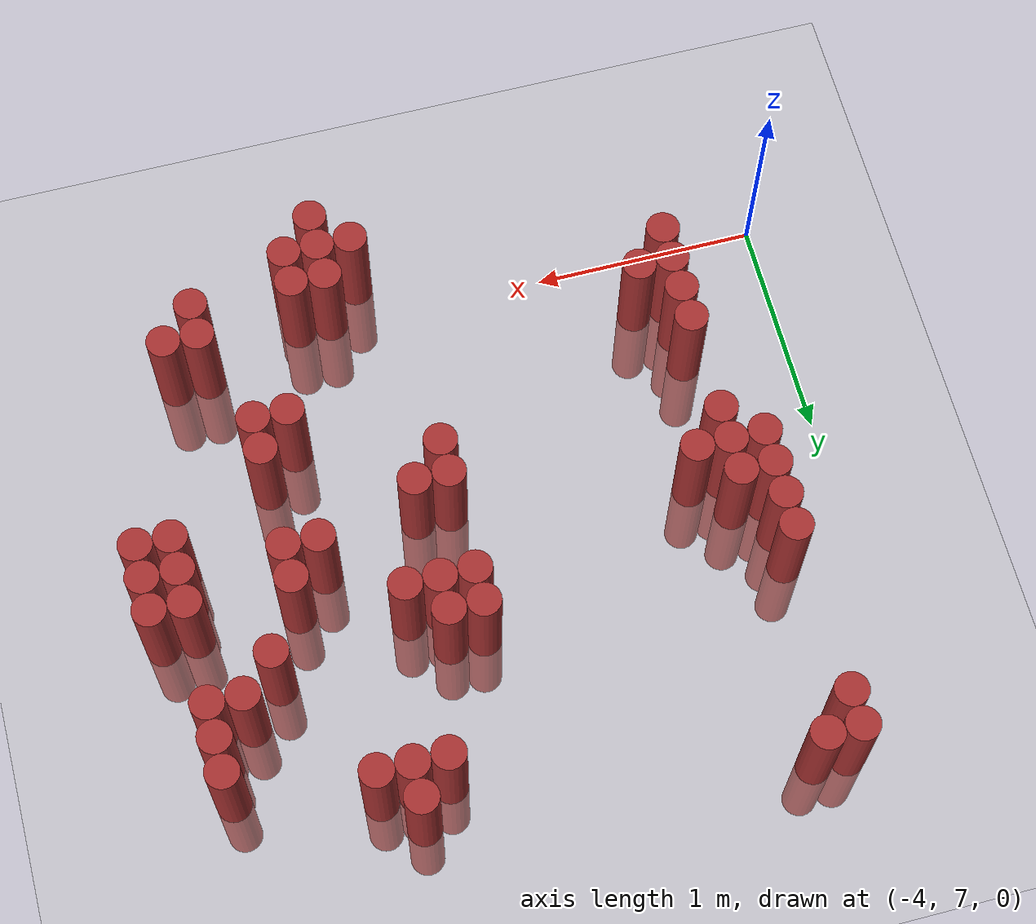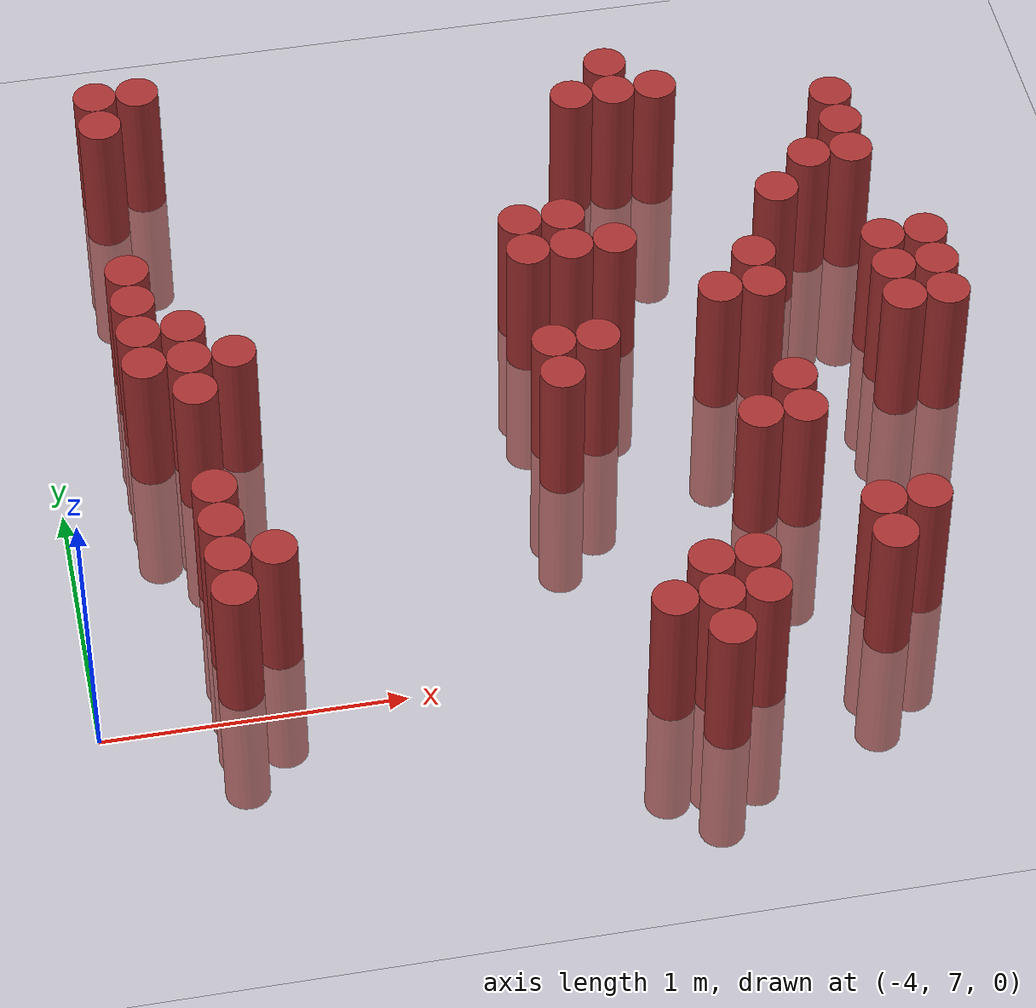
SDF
<sdf version="1.6">
 <world name="default">
  <model name="ground_plane">
   <static>1</static>
   <link name="link">
    <collision name="collision">
     <geometry><plane><normal>0 0 1</normal><size>100 100</size></plane></geometry>
     <surface><friction><ode><mu>100</mu><mu2>50</mu2></ode></friction></surface>
    </collision>
    <visual name="visual">
     <cast_shadows>0</cast_shadows>
     <geometry><plane><normal>0 0 1</normal><size>100 100</size></plane></geometry>
     <material>
      <script><uri>file://media/materials/scripts/gazebo.material</uri><name>Gazebo/Grey</name></script>
     </material>
    </visual>
   </link>
  </model>
  <model name="unit_cylinder_169">
   <static>1</static>
   <pose>-3.675000 8.175000 0.000000 0.000000 0.000000 0.000000</pose>
   <link name="link">
    <inertial>
     <mass>1</mass>
     <inertia><ixx>0.145833</ixx><ixy>0</ixy><ixz>0</ixz><iyy>0.145833</iyy><iyz>0</iyz><izz>0.125</izz></inertia>
    </inertial>
    <collision name="collision">
     <geometry><cylinder><radius>0.075000</radius><length>1</length></cylinder></geometry>
    </collision>
    <visual name="visual">
     <geometry><cylinder><radius>0.075000</radius><length>1</length></cylinder></geometry>
     <material>
      <ambient>0.648000 0.192000 0.192000 1</ambient>
      <diffuse>0.648000 0.192000 0.192000 1</diffuse>
     </material>
     <material>
      <script><name>Gazebo/Grey</name><uri>file://media/materials/scripts/gazebo.material</uri></script>
     </material>
    </visual>
   </link>
  </model>
  <model name="unit_cylinder_170">
   <static>1</static>
   <pose>-3.675000 8.325000 0.000000 0.000000 0.000000 0.000000</pose>
   <link name="link">
    <inertial>
     <mass>1</mass>
     <inertia><ixx>0.145833</ixx><ixy>0</ixy><ixz>0</ixz><iyy>0.145833</iyy><iyz>0</iyz><izz>0.125</izz></inertia>
    </inertial>
    <collision name="collision">
     <geometry><cylinder><radius>0.075000</radius><length>1</length></cylinder></geometry>
    </collision>
    <visual name="visual">
     <geometry><cylinder><radius>0.075000</radius><length>1</length></cylinder></geometry>
     <material>
      <ambient>0.648000 0.192000 0.192000 1</ambient>
      <diffuse>0.648000 0.192000 0.192000 1</diffuse>
     </material>
     <material>
      <script><name>Gazebo/Grey</name><uri>file://media/materials/scripts/gazebo.material</uri></script>
     </material>
    </visual>
   </link>
  </model>
  <model name="unit_cylinder_171">
   <static>1</static>
   <pose>-3.675000 8.475000 0.000000 0.000000 0.000000 0.000000</pose>
   <link name="link">
    <inertial>
     <mass>1</mass>
     <inertia><ixx>0.145833</ixx><ixy>0</ixy><ixz>0</ixz><iyy>0.145833</iyy><iyz>0</iyz><izz>0.125</izz></inertia>
    </inertial>
    <collision name="collision">
     <geometry><cylinder><radius>0.075000</radius><length>1</length></cylinder></geometry>
    </collision>
    <visual name="visual">
     <geometry><cylinder><radius>0.075000</radius><length>1</length></cylinder></geometry>
     <material>
      <ambient>0.648000 0.192000 0.192000 1</ambient>
      <diffuse>0.648000 0.192000 0.192000 1</diffuse>
     </material>
     <material>
      <script><name>Gazebo/Grey</name><uri>file://media/materials/scripts/gazebo.material</uri></script>
     </material>
    </visual>
   </link>
  </model>
  <model name="unit_cylinder_172">
   <static>1</static>
   <pose>-3.675000 8.625000 0.000000 0.000000 0.000000 0.000000</pose>
   <link name="link">
    <inertial>
     <mass>1</mass>
     <inertia><ixx>0.145833</ixx><ixy>0</ixy><ixz>0</ixz><iyy>0.145833</iyy><iyz>0</iyz><izz>0.125</izz></inertia>
    </inertial>
    <collision name="collision">
     <geometry><cylinder><radius>0.075000</radius><length>1</length></cylinder></geometry>
    </collision>
    <visual name="visual">
     <geometry><cylinder><radius>0.075000</radius><length>1</length></cylinder></geometry>
     <material>
      <ambient>0.648000 0.192000 0.192000 1</ambient>
      <diffuse>0.648000 0.192000 0.192000 1</diffuse>
     </material>
     <material>
      <script><name>Gazebo/Grey</name><uri>file://media/materials/scripts/gazebo.material</uri></script>
     </material>
    </visual>
   </link>
  </model>
  <model name="unit_cylinder_173">
   <static>1</static>
   <pose>-3.675000 9.375000 0.000000 0.000000 0.000000 0.000000</pose>
   <link name="link">
    <inertial>
     <mass>1</mass>
     <inertia><ixx>0.145833</ixx><ixy>0</ixy><ixz>0</ixz><iyy>0.145833</iyy><iyz>0</iyz><izz>0.125</izz></inertia>
    </inertial>
    <collision name="collision">
     <geometry><cylinder><radius>0.075000</radius><length>1</length></cylinder></geometry>
    </collision>
    <visual name="visual">
     <geometry><cylinder><radius>0.075000</radius><length>1</length></cylinder></geometry>
     <material>
      <ambient>0.648000 0.192000 0.192000 1</ambient>
      <diffuse>0.648000 0.192000 0.192000 1</diffuse>
     </material>
     <material>
      <script><name>Gazebo/Grey</name><uri>file://media/materials/scripts/gazebo.material</uri></script>
     </material>
    </visual>
   </link>
  </model>
  <model name="unit_cylinder_174">
   <static>1</static>
   <pose>-3.675000 9.525000 0.000000 0.000000 0.000000 0.000000</pose>
   <link name="link">
    <inertial>
     <mass>1</mass>
     <inertia><ixx>0.145833</ixx><ixy>0</ixy><ixz>0</ixz><iyy>0.145833</iyy><iyz>0</iyz><izz>0.125</izz></inertia>
    </inertial>
    <collision name="collision">
     <geometry><cylinder><radius>0.075000</radius><length>1</length></cylinder></geometry>
    </collision>
    <visual name="visual">
     <geometry><cylinder><radius>0.075000</radius><length>1</length></cylinder></geometry>
     <material>
      <ambient>0.648000 0.192000 0.192000 1</ambient>
      <diffuse>0.648000 0.192000 0.192000 1</diffuse>
     </material>
     <material>
      <script><name>Gazebo/Grey</name><uri>file://media/materials/scripts/gazebo.material</uri></script>
     </material>
    </visual>
   </link>
  </model>
  <model name="unit_cylinder_175">
   <static>1</static>
   <pose>-3.525000 7.125000 0.000000 0.000000 0.000000 0.000000</pose>
   <link name="link">
    <inertial>
     <mass>1</mass>
     <inertia><ixx>0.145833</ixx><ixy>0</ixy><ixz>0</ixz><iyy>0.145833</iyy><iyz>0</iyz><izz>0.125</izz></inertia>
    </inertial>
    <collision name="collision">
     <geometry><cylinder><radius>0.075000</radius><length>1</length></cylinder></geometry>
    </collision>
    <visual name="visual">
     <geometry><cylinder><radius>0.075000</radius><length>1</length></cylinder></geometry>
     <material>
      <ambient>0.648000 0.192000 0.192000 1</ambient>
      <diffuse>0.648000 0.192000 0.192000 1</diffuse>
     </material>
     <material>
      <script><name>Gazebo/Grey</name><uri>file://media/materials/scripts/gazebo.material</uri></script>
     </material>
    </visual>
   </link>
  </model>
  <model name="unit_cylinder_176">
   <static>1</static>
   <pose>-3.525000 7.275000 0.000000 0.000000 0.000000 0.000000</pose>
   <link name="link">
    <inertial>
     <mass>1</mass>
     <inertia><ixx>0.145833</ixx><ixy>0</ixy><ixz>0</ixz><iyy>0.145833</iyy><iyz>0</iyz><izz>0.125</izz></inertia>
    </inertial>
    <collision name="collision">
     <geometry><cylinder><radius>0.075000</radius><length>1</length></cylinder></geometry>
    </collision>
    <visual name="visual">
     <geometry><cylinder><radius>0.075000</radius><length>1</length></cylinder></geometry>
     <material>
      <ambient>0.648000 0.192000 0.192000 1</ambient>
      <diffuse>0.648000 0.192000 0.192000 1</diffuse>
     </material>
     <material>
      <script><name>Gazebo/Grey</name><uri>file://media/materials/scripts/gazebo.material</uri></script>
     </material>
    </visual>
   </link>
  </model>
  <model name="unit_cylinder_177">
   <static>1</static>
   <pose>-3.525000 7.425000 0.000000 0.000000 0.000000 0.000000</pose>
   <link name="link">
    <inertial>
     <mass>1</mass>
     <inertia><ixx>0.145833</ixx><ixy>0</ixy><ixz>0</ixz><iyy>0.145833</iyy><iyz>0</iyz><izz>0.125</izz></inertia>
    </inertial>
    <collision name="collision">
     <geometry><cylinder><radius>0.075000</radius><length>1</length></cylinder></geometry>
    </collision>
    <visual name="visual">
     <geometry><cylinder><radius>0.075000</radius><length>1</length></cylinder></geometry>
     <material>
      <ambient>0.648000 0.192000 0.192000 1</ambient>
      <diffuse>0.648000 0.192000 0.192000 1</diffuse>
     </material>
     <material>
      <script><name>Gazebo/Grey</name><uri>file://media/materials/scripts/gazebo.material</uri></script>
     </material>
    </visual>
   </link>
  </model>
  <model name="unit_cylinder_178">
   <static>1</static>
   <pose>-3.525000 7.575000 0.000000 0.000000 0.000000 0.000000</pose>
   <link name="link">
    <inertial>
     <mass>1</mass>
     <inertia><ixx>0.145833</ixx><ixy>0</ixy><ixz>0</ixz><iyy>0.145833</iyy><iyz>0</iyz><izz>0.125</izz></inertia>
    </inertial>
    <collision name="collision">
     <geometry><cylinder><radius>0.075000</radius><length>1</length></cylinder></geometry>
    </collision>
    <visual name="visual">
     <geometry><cylinder><radius>0.075000</radius><length>1</length></cylinder></geometry>
     <material>
      <ambient>0.648000 0.192000 0.192000 1</ambient>
      <diffuse>0.648000 0.192000 0.192000 1</diffuse>
     </material>
     <material>
      <script><name>Gazebo/Grey</name><uri>file://media/materials/scripts/gazebo.material</uri></script>
     </material>
    </visual>
   </link>
  </model>
  <model name="unit_cylinder_179">
   <static>1</static>
   <pose>-3.525000 8.025000 0.000000 0.000000 0.000000 0.000000</pose>
   <link name="link">
    <inertial>
     <mass>1</mass>
     <inertia><ixx>0.145833</ixx><ixy>0</ixy><ixz>0</ixz><iyy>0.145833</iyy><iyz>0</iyz><izz>0.125</izz></inertia>
    </inertial>
    <collision name="collision">
     <geometry><cylinder><radius>0.075000</radius><length>1</length></cylinder></geometry>
    </collision>
    <visual name="visual">
     <geometry><cylinder><radius>0.075000</radius><length>1</length></cylinder></geometry>
     <material>
      <ambient>0.648000 0.192000 0.192000 1</ambient>
      <diffuse>0.648000 0.192000 0.192000 1</diffuse>
     </material>
     <material>
      <script><name>Gazebo/Grey</name><uri>file://media/materials/scripts/gazebo.material</uri></script>
     </material>
    </visual>
   </link>
  </model>
  <model name="unit_cylinder_180">
   <static>1</static>
   <pose>-3.525000 8.175000 0.000000 0.000000 0.000000 0.000000</pose>
   <link name="link">
    <inertial>
     <mass>1</mass>
     <inertia><ixx>0.145833</ixx><ixy>0</ixy><ixz>0</ixz><iyy>0.145833</iyy><iyz>0</iyz><izz>0.125</izz></inertia>
    </inertial>
    <collision name="collision">
     <geometry><cylinder><radius>0.075000</radius><length>1</length></cylinder></geometry>
    </collision>
    <visual name="visual">
     <geometry><cylinder><radius>0.075000</radius><length>1</length></cylinder></geometry>
     <material>
      <ambient>0.648000 0.192000 0.192000 1</ambient>
      <diffuse>0.648000 0.192000 0.192000 1</diffuse>
     </material>
     <material>
      <script><name>Gazebo/Grey</name><uri>file://media/materials/scripts/gazebo.material</uri></script>
     </material>
    </visual>
   </link>
  </model>
  <model name="unit_cylinder_181">
   <static>1</static>
   <pose>-3.525000 8.325000 0.000000 0.000000 0.000000 0.000000</pose>
   <link name="link">
    <inertial>
     <mass>1</mass>
     <inertia><ixx>0.145833</ixx><ixy>0</ixy><ixz>0</ixz><iyy>0.145833</iyy><iyz>0</iyz><izz>0.125</izz></inertia>
    </inertial>
    <collision name="collision">
     <geometry><cylinder><radius>0.075000</radius><length>1</length></cylinder></geometry>
    </collision>
    <visual name="visual">
     <geometry><cylinder><radius>0.075000</radius><length>1</length></cylinder></geometry>
     <material>
      <ambient>0.648000 0.192000 0.192000 1</ambient>
      <diffuse>0.648000 0.192000 0.192000 1</diffuse>
     </material>
     <material>
      <script><name>Gazebo/Grey</name><uri>file://media/materials/scripts/gazebo.material</uri></script>
     </material>
    </visual>
   </link>
  </model>
  <model name="unit_cylinder_182">
   <static>1</static>
   <pose>-3.525000 9.525000 0.000000 0.000000 0.000000 0.000000</pose>
   <link name="link">
    <inertial>
     <mass>1</mass>
     <inertia><ixx>0.145833</ixx><ixy>0</ixy><ixz>0</ixz><iyy>0.145833</iyy><iyz>0</iyz><izz>0.125</izz></inertia>
    </inertial>
    <collision name="collision">
     <geometry><cylinder><radius>0.075000</radius><length>1</length></cylinder></geometry>
    </collision>
    <visual name="visual">
     <geometry><cylinder><radius>0.075000</radius><length>1</length></cylinder></geometry>
     <material>
      <ambient>0.648000 0.192000 0.192000 1</ambient>
      <diffuse>0.648000 0.192000 0.192000 1</diffuse>
     </material>
     <material>
      <script><name>Gazebo/Grey</name><uri>file://media/materials/scripts/gazebo.material</uri></script>
     </material>
    </visual>
   </link>
  </model>
  <model name="unit_cylinder_183">
   <static>1</static>
   <pose>-3.375000 7.275000 0.000000 0.000000 0.000000 0.000000</pose>
   <link name="link">
    <inertial>
     <mass>1</mass>
     <inertia><ixx>0.145833</ixx><ixy>0</ixy><ixz>0</ixz><iyy>0.145833</iyy><iyz>0</iyz><izz>0.125</izz></inertia>
    </inertial>
    <collision name="collision">
     <geometry><cylinder><radius>0.075000</radius><length>1</length></cylinder></geometry>
    </collision>
    <visual name="visual">
     <geometry><cylinder><radius>0.075000</radius><length>1</length></cylinder></geometry>
     <material>
      <ambient>0.648000 0.192000 0.192000 1</ambient>
      <diffuse>0.648000 0.192000 0.192000 1</diffuse>
     </material>
     <material>
      <script><name>Gazebo/Grey</name><uri>file://media/materials/scripts/gazebo.material</uri></script>
     </material>
    </visual>
   </link>
  </model>
  <model name="unit_cylinder_184">
   <static>1</static>
   <pose>-3.375000 8.175000 0.000000 0.000000 0.000000 0.000000</pose>
   <link name="link">
    <inertial>
     <mass>1</mass>
     <inertia><ixx>0.145833</ixx><ixy>0</ixy><ixz>0</ixz><iyy>0.145833</iyy><iyz>0</iyz><izz>0.125</izz></inertia>
    </inertial>
    <collision name="collision">
     <geometry><cylinder><radius>0.075000</radius><length>1</length></cylinder></geometry>
    </collision>
    <visual name="visual">
     <geometry><cylinder><radius>0.075000</radius><length>1</length></cylinder></geometry>
     <material>
      <ambient>0.648000 0.192000 0.192000 1</ambient>
      <diffuse>0.648000 0.192000 0.192000 1</diffuse>
     </material>
     <material>
      <script><name>Gazebo/Grey</name><uri>file://media/materials/scripts/gazebo.material</uri></script>
     </material>
    </visual>
   </link>
  </model>
  <model name="unit_cylinder_192">
   <static>1</static>
   <pose>-2.325000 7.875000 0.000000 0.000000 0.000000 0.000000</pose>
   <link name="link">
    <inertial>
     <mass>1</mass>
     <inertia><ixx>0.145833</ixx><ixy>0</ixy><ixz>0</ixz><iyy>0.145833</iyy><iyz>0</iyz><izz>0.125</izz></inertia>
    </inertial>
    <collision name="collision">
     <geometry><cylinder><radius>0.075000</radius><length>1</length></cylinder></geometry>
    </collision>
    <visual name="visual">
     <geometry><cylinder><radius>0.075000</radius><length>1</length></cylinder></geometry>
     <material>
      <ambient>0.648000 0.192000 0.192000 1</ambient>
      <diffuse>0.648000 0.192000 0.192000 1</diffuse>
     </material>
     <material>
      <script><name>Gazebo/Grey</name><uri>file://media/materials/scripts/gazebo.material</uri></script>
     </material>
    </visual>
   </link>
  </model>
  <model name="unit_cylinder_193">
   <static>1</static>
   <pose>-2.325000 8.025000 0.000000 0.000000 0.000000 0.000000</pose>
   <link name="link">
    <inertial>
     <mass>1</mass>
     <inertia><ixx>0.145833</ixx><ixy>0</ixy><ixz>0</ixz><iyy>0.145833</iyy><iyz>0</iyz><izz>0.125</izz></inertia>
    </inertial>
    <collision name="collision">
     <geometry><cylinder><radius>0.075000</radius><length>1</length></cylinder></geometry>
    </collision>
    <visual name="visual">
     <geometry><cylinder><radius>0.075000</radius><length>1</length></cylinder></geometry>
     <material>
      <ambient>0.648000 0.192000 0.192000 1</ambient>
      <diffuse>0.648000 0.192000 0.192000 1</diffuse>
     </material>
     <material>
      <script><name>Gazebo/Grey</name><uri>file://media/materials/scripts/gazebo.material</uri></script>
     </material>
    </visual>
   </link>
  </model>
  <model name="unit_cylinder_194">
   <static>1</static>
   <pose>-2.325000 8.475000 0.000000 0.000000 0.000000 0.000000</pose>
   <link name="link">
    <inertial>
     <mass>1</mass>
     <inertia><ixx>0.145833</ixx><ixy>0</ixy><ixz>0</ixz><iyy>0.145833</iyy><iyz>0</iyz><izz>0.125</izz></inertia>
    </inertial>
    <collision name="collision">
     <geometry><cylinder><radius>0.075000</radius><length>1</length></cylinder></geometry>
    </collision>
    <visual name="visual">
     <geometry><cylinder><radius>0.075000</radius><length>1</length></cylinder></geometry>
     <material>
      <ambient>0.648000 0.192000 0.192000 1</ambient>
      <diffuse>0.648000 0.192000 0.192000 1</diffuse>
     </material>
     <material>
      <script><name>Gazebo/Grey</name><uri>file://media/materials/scripts/gazebo.material</uri></script>
     </material>
    </visual>
   </link>
  </model>
  <model name="unit_cylinder_195">
   <static>1</static>
   <pose>-2.325000 8.625000 0.000000 0.000000 0.000000 0.000000</pose>
   <link name="link">
    <inertial>
     <mass>1</mass>
     <inertia><ixx>0.145833</ixx><ixy>0</ixy><ixz>0</ixz><iyy>0.145833</iyy><iyz>0</iyz><izz>0.125</izz></inertia>
    </inertial>
    <collision name="collision">
     <geometry><cylinder><radius>0.075000</radius><length>1</length></cylinder></geometry>
    </collision>
    <visual name="visual">
     <geometry><cylinder><radius>0.075000</radius><length>1</length></cylinder></geometry>
     <material>
      <ambient>0.648000 0.192000 0.192000 1</ambient>
      <diffuse>0.648000 0.192000 0.192000 1</diffuse>
     </material>
     <material>
      <script><name>Gazebo/Grey</name><uri>file://media/materials/scripts/gazebo.material</uri></script>
     </material>
    </visual>
   </link>
  </model>
  <model name="unit_cylinder_198">
   <static>1</static>
   <pose>-2.175000 6.825000 0.000000 0.000000 0.000000 0.000000</pose>
   <link name="link">
    <inertial>
     <mass>1</mass>
     <inertia><ixx>0.145833</ixx><ixy>0</ixy><ixz>0</ixz><iyy>0.145833</iyy><iyz>0</iyz><izz>0.125</izz></inertia>
    </inertial>
    <collision name="collision">
     <geometry><cylinder><radius>0.075000</radius><length>1</length></cylinder></geometry>
    </collision>
    <visual name="visual">
     <geometry><cylinder><radius>0.075000</radius><length>1</length></cylinder></geometry>
     <material>
      <ambient>0.648000 0.192000 0.192000 1</ambient>
      <diffuse>0.648000 0.192000 0.192000 1</diffuse>
     </material>
     <material>
      <script><name>Gazebo/Grey</name><uri>file://media/materials/scripts/gazebo.material</uri></script>
     </material>
    </visual>
   </link>
  </model>
  <model name="unit_cylinder_199">
   <static>1</static>
   <pose>-2.175000 8.025000 0.000000 0.000000 0.000000 0.000000</pose>
   <link name="link">
    <inertial>
     <mass>1</mass>
     <inertia><ixx>0.145833</ixx><ixy>0</ixy><ixz>0</ixz><iyy>0.145833</iyy><iyz>0</iyz><izz>0.125</izz></inertia>
    </inertial>
    <collision name="collision">
     <geometry><cylinder><radius>0.075000</radius><length>1</length></cylinder></geometry>
    </collision>
    <visual name="visual">
     <geometry><cylinder><radius>0.075000</radius><length>1</length></cylinder></geometry>
     <material>
      <ambient>0.648000 0.192000 0.192000 1</ambient>
      <diffuse>0.648000 0.192000 0.192000 1</diffuse>
     </material>
     <material>
      <script><name>Gazebo/Grey</name><uri>file://media/materials/scripts/gazebo.material</uri></script>
     </material>
    </visual>
   </link>
  </model>
  <model name="unit_cylinder_200">
   <static>1</static>
   <pose>-2.175000 8.475000 0.000000 0.000000 0.000000 0.000000</pose>
   <link name="link">
    <inertial>
     <mass>1</mass>
     <inertia><ixx>0.145833</ixx><ixy>0</ixy><ixz>0</ixz><iyy>0.145833</iyy><iyz>0</iyz><izz>0.125</izz></inertia>
    </inertial>
    <collision name="collision">
     <geometry><cylinder><radius>0.075000</radius><length>1</length></cylinder></geometry>
    </collision>
    <visual name="visual">
     <geometry><cylinder><radius>0.075000</radius><length>1</length></cylinder></geometry>
     <material>
      <ambient>0.648000 0.192000 0.192000 1</ambient>
      <diffuse>0.648000 0.192000 0.192000 1</diffuse>
     </material>
     <material>
      <script><name>Gazebo/Grey</name><uri>file://media/materials/scripts/gazebo.material</uri></script>
     </material>
    </visual>
   </link>
  </model>
  <model name="unit_cylinder_201">
   <static>1</static>
   <pose>-2.175000 8.625000 0.000000 0.000000 0.000000 0.000000</pose>
   <link name="link">
    <inertial>
     <mass>1</mass>
     <inertia><ixx>0.145833</ixx><ixy>0</ixy><ixz>0</ixz><iyy>0.145833</iyy><iyz>0</iyz><izz>0.125</izz></inertia>
    </inertial>
    <collision name="collision">
     <geometry><cylinder><radius>0.075000</radius><length>1</length></cylinder></geometry>
    </collision>
    <visual name="visual">
     <geometry><cylinder><radius>0.075000</radius><length>1</length></cylinder></geometry>
     <material>
      <ambient>0.648000 0.192000 0.192000 1</ambient>
      <diffuse>0.648000 0.192000 0.192000 1</diffuse>
     </material>
     <material>
      <script><name>Gazebo/Grey</name><uri>file://media/materials/scripts/gazebo.material</uri></script>
     </material>
    </visual>
   </link>
  </model>
  <model name="unit_cylinder_203">
   <static>1</static>
   <pose>-2.025000 6.675000 0.000000 0.000000 0.000000 0.000000</pose>
   <link name="link">
    <inertial>
     <mass>1</mass>
     <inertia><ixx>0.145833</ixx><ixy>0</ixy><ixz>0</ixz><iyy>0.145833</iyy><iyz>0</iyz><izz>0.125</izz></inertia>
    </inertial>
    <collision name="collision">
     <geometry><cylinder><radius>0.075000</radius><length>1</length></cylinder></geometry>
    </collision>
    <visual name="visual">
     <geometry><cylinder><radius>0.075000</radius><length>1</length></cylinder></geometry>
     <material>
      <ambient>0.648000 0.192000 0.192000 1</ambient>
      <diffuse>0.648000 0.192000 0.192000 1</diffuse>
     </material>
     <material>
      <script><name>Gazebo/Grey</name><uri>file://media/materials/scripts/gazebo.material</uri></script>
     </material>
    </visual>
   </link>
  </model>
  <model name="unit_cylinder_204">
   <static>1</static>
   <pose>-2.025000 6.825000 0.000000 0.000000 0.000000 0.000000</pose>
   <link name="link">
    <inertial>
     <mass>1</mass>
     <inertia><ixx>0.145833</ixx><ixy>0</ixy><ixz>0</ixz><iyy>0.145833</iyy><iyz>0</iyz><izz>0.125</izz></inertia>
    </inertial>
    <collision name="collision">
     <geometry><cylinder><radius>0.075000</radius><length>1</length></cylinder></geometry>
    </collision>
    <visual name="visual">
     <geometry><cylinder><radius>0.075000</radius><length>1</length></cylinder></geometry>
     <material>
      <ambient>0.648000 0.192000 0.192000 1</ambient>
      <diffuse>0.648000 0.192000 0.192000 1</diffuse>
     </material>
     <material>
      <script><name>Gazebo/Grey</name><uri>file://media/materials/scripts/gazebo.material</uri></script>
     </material>
    </visual>
   </link>
  </model>
  <model name="unit_cylinder_205">
   <static>1</static>
   <pose>-2.025000 6.975000 0.000000 0.000000 0.000000 0.000000</pose>
   <link name="link">
    <inertial>
     <mass>1</mass>
     <inertia><ixx>0.145833</ixx><ixy>0</ixy><ixz>0</ixz><iyy>0.145833</iyy><iyz>0</iyz><izz>0.125</izz></inertia>
    </inertial>
    <collision name="collision">
     <geometry><cylinder><radius>0.075000</radius><length>1</length></cylinder></geometry>
    </collision>
    <visual name="visual">
     <geometry><cylinder><radius>0.075000</radius><length>1</length></cylinder></geometry>
     <material>
      <ambient>0.648000 0.192000 0.192000 1</ambient>
      <diffuse>0.648000 0.192000 0.192000 1</diffuse>
     </material>
     <material>
      <script><name>Gazebo/Grey</name><uri>file://media/materials/scripts/gazebo.material</uri></script>
     </material>
    </visual>
   </link>
  </model>
  <model name="unit_cylinder_206">
   <static>1</static>
   <pose>-2.025000 8.475000 0.000000 0.000000 0.000000 0.000000</pose>
   <link name="link">
    <inertial>
     <mass>1</mass>
     <inertia><ixx>0.145833</ixx><ixy>0</ixy><ixz>0</ixz><iyy>0.145833</iyy><iyz>0</iyz><izz>0.125</izz></inertia>
    </inertial>
    <collision name="collision">
     <geometry><cylinder><radius>0.075000</radius><length>1</length></cylinder></geometry>
    </collision>
    <visual name="visual">
     <geometry><cylinder><radius>0.075000</radius><length>1</length></cylinder></geometry>
     <material>
      <ambient>0.648000 0.192000 0.192000 1</ambient>
      <diffuse>0.648000 0.192000 0.192000 1</diffuse>
     </material>
     <material>
      <script><name>Gazebo/Grey</name><uri>file://media/materials/scripts/gazebo.material</uri></script>
     </material>
    </visual>
   </link>
  </model>
  <model name="unit_cylinder_207">
   <static>1</static>
   <pose>-2.025000 9.225000 0.000000 0.000000 0.000000 0.000000</pose>
   <link name="link">
    <inertial>
     <mass>1</mass>
     <inertia><ixx>0.145833</ixx><ixy>0</ixy><ixz>0</ixz><iyy>0.145833</iyy><iyz>0</iyz><izz>0.125</izz></inertia>
    </inertial>
    <collision name="collision">
     <geometry><cylinder><radius>0.075000</radius><length>1</length></cylinder></geometry>
    </collision>
    <visual name="visual">
     <geometry><cylinder><radius>0.075000</radius><length>1</length></cylinder></geometry>
     <material>
      <ambient>0.648000 0.192000 0.192000 1</ambient>
      <diffuse>0.648000 0.192000 0.192000 1</diffuse>
     </material>
     <material>
      <script><name>Gazebo/Grey</name><uri>file://media/materials/scripts/gazebo.material</uri></script>
     </material>
    </visual>
   </link>
  </model>
  <model name="unit_cylinder_209">
   <static>1</static>
   <pose>-1.875000 6.825000 0.000000 0.000000 0.000000 0.000000</pose>
   <link name="link">
    <inertial>
     <mass>1</mass>
     <inertia><ixx>0.145833</ixx><ixy>0</ixy><ixz>0</ixz><iyy>0.145833</iyy><iyz>0</iyz><izz>0.125</izz></inertia>
    </inertial>
    <collision name="collision">
     <geometry><cylinder><radius>0.075000</radius><length>1</length></cylinder></geometry>
    </collision>
    <visual name="visual">
     <geometry><cylinder><radius>0.075000</radius><length>1</length></cylinder></geometry>
     <material>
      <ambient>0.648000 0.192000 0.192000 1</ambient>
      <diffuse>0.648000 0.192000 0.192000 1</diffuse>
     </material>
     <material>
      <script><name>Gazebo/Grey</name><uri>file://media/materials/scripts/gazebo.material</uri></script>
     </material>
    </visual>
   </link>
  </model>
  <model name="unit_cylinder_210">
   <static>1</static>
   <pose>-1.875000 6.975000 0.000000 0.000000 0.000000 0.000000</pose>
   <link name="link">
    <inertial>
     <mass>1</mass>
     <inertia><ixx>0.145833</ixx><ixy>0</ixy><ixz>0</ixz><iyy>0.145833</iyy><iyz>0</iyz><izz>0.125</izz></inertia>
    </inertial>
    <collision name="collision">
     <geometry><cylinder><radius>0.075000</radius><length>1</length></cylinder></geometry>
    </collision>
    <visual name="visual">
     <geometry><cylinder><radius>0.075000</radius><length>1</length></cylinder></geometry>
     <material>
      <ambient>0.648000 0.192000 0.192000 1</ambient>
      <diffuse>0.648000 0.192000 0.192000 1</diffuse>
     </material>
     <material>
      <script><name>Gazebo/Grey</name><uri>file://media/materials/scripts/gazebo.material</uri></script>
     </material>
    </visual>
   </link>
  </model>
  <model name="unit_cylinder_211">
   <static>1</static>
   <pose>-1.875000 9.225000 0.000000 0.000000 0.000000 0.000000</pose>
   <link name="link">
    <inertial>
     <mass>1</mass>
     <inertia><ixx>0.145833</ixx><ixy>0</ixy><ixz>0</ixz><iyy>0.145833</iyy><iyz>0</iyz><izz>0.125</izz></inertia>
    </inertial>
    <collision name="collision">
     <geometry><cylinder><radius>0.075000</radius><length>1</length></cylinder></geometry>
    </collision>
    <visual name="visual">
     <geometry><cylinder><radius>0.075000</radius><length>1</length></cylinder></geometry>
     <material>
      <ambient>0.648000 0.192000 0.192000 1</ambient>
      <diffuse>0.648000 0.192000 0.192000 1</diffuse>
     </material>
     <material>
      <script><name>Gazebo/Grey</name><uri>file://media/materials/scripts/gazebo.material</uri></script>
     </material>
    </visual>
   </link>
  </model>
  <model name="unit_cylinder_212">
   <static>1</static>
   <pose>-1.875000 9.375000 0.000000 0.000000 0.000000 0.000000</pose>
   <link name="link">
    <inertial>
     <mass>1</mass>
     <inertia><ixx>0.145833</ixx><ixy>0</ixy><ixz>0</ixz><iyy>0.145833</iyy><iyz>0</iyz><izz>0.125</izz></inertia>
    </inertial>
    <collision name="collision">
     <geometry><cylinder><radius>0.075000</radius><length>1</length></cylinder></geometry>
    </collision>
    <visual name="visual">
     <geometry><cylinder><radius>0.075000</radius><length>1</length></cylinder></geometry>
     <material>
      <ambient>0.648000 0.192000 0.192000 1</ambient>
      <diffuse>0.648000 0.192000 0.192000 1</diffuse>
     </material>
     <material>
      <script><name>Gazebo/Grey</name><uri>file://media/materials/scripts/gazebo.material</uri></script>
     </material>
    </visual>
   </link>
  </model>
  <model name="unit_cylinder_215">
   <static>1</static>
   <pose>-1.725000 7.575000 0.000000 0.000000 0.000000 0.000000</pose>
   <link name="link">
    <inertial>
     <mass>1</mass>
     <inertia><ixx>0.145833</ixx><ixy>0</ixy><ixz>0</ixz><iyy>0.145833</iyy><iyz>0</iyz><izz>0.125</izz></inertia>
    </inertial>
    <collision name="collision">
     <geometry><cylinder><radius>0.075000</radius><length>1</length></cylinder></geometry>
    </collision>
    <visual name="visual">
     <geometry><cylinder><radius>0.075000</radius><length>1</length></cylinder></geometry>
     <material>
      <ambient>0.648000 0.192000 0.192000 1</ambient>
      <diffuse>0.648000 0.192000 0.192000 1</diffuse>
     </material>
     <material>
      <script><name>Gazebo/Grey</name><uri>file://media/materials/scripts/gazebo.material</uri></script>
     </material>
    </visual>
   </link>
  </model>
  <model name="unit_cylinder_216">
   <static>1</static>
   <pose>-1.725000 8.175000 0.000000 0.000000 0.000000 0.000000</pose>
   <link name="link">
    <inertial>
     <mass>1</mass>
     <inertia><ixx>0.145833</ixx><ixy>0</ixy><ixz>0</ixz><iyy>0.145833</iyy><iyz>0</iyz><izz>0.125</izz></inertia>
    </inertial>
    <collision name="collision">
     <geometry><cylinder><radius>0.075000</radius><length>1</length></cylinder></geometry>
    </collision>
    <visual name="visual">
     <geometry><cylinder><radius>0.075000</radius><length>1</length></cylinder></geometry>
     <material>
      <ambient>0.648000 0.192000 0.192000 1</ambient>
      <diffuse>0.648000 0.192000 0.192000 1</diffuse>
     </material>
     <material>
      <script><name>Gazebo/Grey</name><uri>file://media/materials/scripts/gazebo.material</uri></script>
     </material>
    </visual>
   </link>
  </model>
  <model name="unit_cylinder_217">
   <static>1</static>
   <pose>-1.725000 9.225000 0.000000 0.000000 0.000000 0.000000</pose>
   <link name="link">
    <inertial>
     <mass>1</mass>
     <inertia><ixx>0.145833</ixx><ixy>0</ixy><ixz>0</ixz><iyy>0.145833</iyy><iyz>0</iyz><izz>0.125</izz></inertia>
    </inertial>
    <collision name="collision">
     <geometry><cylinder><radius>0.075000</radius><length>1</length></cylinder></geometry>
    </collision>
    <visual name="visual">
     <geometry><cylinder><radius>0.075000</radius><length>1</length></cylinder></geometry>
     <material>
      <ambient>0.648000 0.192000 0.192000 1</ambient>
      <diffuse>0.648000 0.192000 0.192000 1</diffuse>
     </material>
     <material>
      <script><name>Gazebo/Grey</name><uri>file://media/materials/scripts/gazebo.material</uri></script>
     </material>
    </visual>
   </link>
  </model>
  <model name="unit_cylinder_221">
   <static>1</static>
   <pose>-1.575000 7.575000 0.000000 0.000000 0.000000 0.000000</pose>
   <link name="link">
    <inertial>
     <mass>1</mass>
     <inertia><ixx>0.145833</ixx><ixy>0</ixy><ixz>0</ixz><iyy>0.145833</iyy><iyz>0</iyz><izz>0.125</izz></inertia>
    </inertial>
    <collision name="collision">
     <geometry><cylinder><radius>0.075000</radius><length>1</length></cylinder></geometry>
    </collision>
    <visual name="visual">
     <geometry><cylinder><radius>0.075000</radius><length>1</length></cylinder></geometry>
     <material>
      <ambient>0.648000 0.192000 0.192000 1</ambient>
      <diffuse>0.648000 0.192000 0.192000 1</diffuse>
     </material>
     <material>
      <script><name>Gazebo/Grey</name><uri>file://media/materials/scripts/gazebo.material</uri></script>
     </material>
    </visual>
   </link>
  </model>
  <model name="unit_cylinder_222">
   <static>1</static>
   <pose>-1.575000 7.725000 0.000000 0.000000 0.000000 0.000000</pose>
   <link name="link">
    <inertial>
     <mass>1</mass>
     <inertia><ixx>0.145833</ixx><ixy>0</ixy><ixz>0</ixz><iyy>0.145833</iyy><iyz>0</iyz><izz>0.125</izz></inertia>
    </inertial>
    <collision name="collision">
     <geometry><cylinder><radius>0.075000</radius><length>1</length></cylinder></geometry>
    </collision>
    <visual name="visual">
     <geometry><cylinder><radius>0.075000</radius><length>1</length></cylinder></geometry>
     <material>
      <ambient>0.648000 0.192000 0.192000 1</ambient>
      <diffuse>0.648000 0.192000 0.192000 1</diffuse>
     </material>
     <material>
      <script><name>Gazebo/Grey</name><uri>file://media/materials/scripts/gazebo.material</uri></script>
     </material>
    </visual>
   </link>
  </model>
  <model name="unit_cylinder_223">
   <static>1</static>
   <pose>-1.575000 8.175000 0.000000 0.000000 0.000000 0.000000</pose>
   <link name="link">
    <inertial>
     <mass>1</mass>
     <inertia><ixx>0.145833</ixx><ixy>0</ixy><ixz>0</ixz><iyy>0.145833</iyy><iyz>0</iyz><izz>0.125</izz></inertia>
    </inertial>
    <collision name="collision">
     <geometry><cylinder><radius>0.075000</radius><length>1</length></cylinder></geometry>
    </collision>
    <visual name="visual">
     <geometry><cylinder><radius>0.075000</radius><length>1</length></cylinder></geometry>
     <material>
      <ambient>0.648000 0.192000 0.192000 1</ambient>
      <diffuse>0.648000 0.192000 0.192000 1</diffuse>
     </material>
     <material>
      <script><name>Gazebo/Grey</name><uri>file://media/materials/scripts/gazebo.material</uri></script>
     </material>
    </visual>
   </link>
  </model>
  <model name="unit_cylinder_224">
   <static>1</static>
   <pose>-1.575000 8.325000 0.000000 0.000000 0.000000 0.000000</pose>
   <link name="link">
    <inertial>
     <mass>1</mass>
     <inertia><ixx>0.145833</ixx><ixy>0</ixy><ixz>0</ixz><iyy>0.145833</iyy><iyz>0</iyz><izz>0.125</izz></inertia>
    </inertial>
    <collision name="collision">
     <geometry><cylinder><radius>0.075000</radius><length>1</length></cylinder></geometry>
    </collision>
    <visual name="visual">
     <geometry><cylinder><radius>0.075000</radius><length>1</length></cylinder></geometry>
     <material>
      <ambient>0.648000 0.192000 0.192000 1</ambient>
      <diffuse>0.648000 0.192000 0.192000 1</diffuse>
     </material>
     <material>
      <script><name>Gazebo/Grey</name><uri>file://media/materials/scripts/gazebo.material</uri></script>
     </material>
    </visual>
   </link>
  </model>
  <model name="unit_cylinder_228">
   <static>1</static>
   <pose>-1.425000 6.975000 0.000000 0.000000 0.000000 0.000000</pose>
   <link name="link">
    <inertial>
     <mass>1</mass>
     <inertia><ixx>0.145833</ixx><ixy>0</ixy><ixz>0</ixz><iyy>0.145833</iyy><iyz>0</iyz><izz>0.125</izz></inertia>
    </inertial>
    <collision name="collision">
     <geometry><cylinder><radius>0.075000</radius><length>1</length></cylinder></geometry>
    </collision>
    <visual name="visual">
     <geometry><cylinder><radius>0.075000</radius><length>1</length></cylinder></geometry>
     <material>
      <ambient>0.648000 0.192000 0.192000 1</ambient>
      <diffuse>0.648000 0.192000 0.192000 1</diffuse>
     </material>
     <material>
      <script><name>Gazebo/Grey</name><uri>file://media/materials/scripts/gazebo.material</uri></script>
     </material>
    </visual>
   </link>
  </model>
  <model name="unit_cylinder_229">
   <static>1</static>
   <pose>-1.425000 7.125000 0.000000 0.000000 0.000000 0.000000</pose>
   <link name="link">
    <inertial>
     <mass>1</mass>
     <inertia><ixx>0.145833</ixx><ixy>0</ixy><ixz>0</ixz><iyy>0.145833</iyy><iyz>0</iyz><izz>0.125</izz></inertia>
    </inertial>
    <collision name="collision">
     <geometry><cylinder><radius>0.075000</radius><length>1</length></cylinder></geometry>
    </collision>
    <visual name="visual">
     <geometry><cylinder><radius>0.075000</radius><length>1</length></cylinder></geometry>
     <material>
      <ambient>0.648000 0.192000 0.192000 1</ambient>
      <diffuse>0.648000 0.192000 0.192000 1</diffuse>
     </material>
     <material>
      <script><name>Gazebo/Grey</name><uri>file://media/materials/scripts/gazebo.material</uri></script>
     </material>
    </visual>
   </link>
  </model>
  <model name="unit_cylinder_230">
   <static>1</static>
   <pose>-1.425000 8.625000 0.000000 0.000000 0.000000 0.000000</pose>
   <link name="link">
    <inertial>
     <mass>1</mass>
     <inertia><ixx>0.145833</ixx><ixy>0</ixy><ixz>0</ixz><iyy>0.145833</iyy><iyz>0</iyz><izz>0.125</izz></inertia>
    </inertial>
    <collision name="collision">
     <geometry><cylinder><radius>0.075000</radius><length>1</length></cylinder></geometry>
    </collision>
    <visual name="visual">
     <geometry><cylinder><radius>0.075000</radius><length>1</length></cylinder></geometry>
     <material>
      <ambient>0.648000 0.192000 0.192000 1</ambient>
      <diffuse>0.648000 0.192000 0.192000 1</diffuse>
     </material>
     <material>
      <script><name>Gazebo/Grey</name><uri>file://media/materials/scripts/gazebo.material</uri></script>
     </material>
    </visual>
   </link>
  </model>
  <model name="unit_cylinder_232">
   <static>1</static>
   <pose>-1.275000 7.125000 0.000000 0.000000 0.000000 0.000000</pose>
   <link name="link">
    <inertial>
     <mass>1</mass>
     <inertia><ixx>0.145833</ixx><ixy>0</ixy><ixz>0</ixz><iyy>0.145833</iyy><iyz>0</iyz><izz>0.125</izz></inertia>
    </inertial>
    <collision name="collision">
     <geometry><cylinder><radius>0.075000</radius><length>1</length></cylinder></geometry>
    </collision>
    <visual name="visual">
     <geometry><cylinder><radius>0.075000</radius><length>1</length></cylinder></geometry>
     <material>
      <ambient>0.648000 0.192000 0.192000 1</ambient>
      <diffuse>0.648000 0.192000 0.192000 1</diffuse>
     </material>
     <material>
      <script><name>Gazebo/Grey</name><uri>file://media/materials/scripts/gazebo.material</uri></script>
     </material>
    </visual>
   </link>
  </model>
  <model name="unit_cylinder_233">
   <static>1</static>
   <pose>-1.275000 8.775000 0.000000 0.000000 0.000000 0.000000</pose>
   <link name="link">
    <inertial>
     <mass>1</mass>
     <inertia><ixx>0.145833</ixx><ixy>0</ixy><ixz>0</ixz><iyy>0.145833</iyy><iyz>0</iyz><izz>0.125</izz></inertia>
    </inertial>
    <collision name="collision">
     <geometry><cylinder><radius>0.075000</radius><length>1</length></cylinder></geometry>
    </collision>
    <visual name="visual">
     <geometry><cylinder><radius>0.075000</radius><length>1</length></cylinder></geometry>
     <material>
      <ambient>0.648000 0.192000 0.192000 1</ambient>
      <diffuse>0.648000 0.192000 0.192000 1</diffuse>
     </material>
     <material>
      <script><name>Gazebo/Grey</name><uri>file://media/materials/scripts/gazebo.material</uri></script>
     </material>
    </visual>
   </link>
  </model>
  <model name="unit_cylinder_234">
   <static>1</static>
   <pose>-1.125000 8.025000 0.000000 0.000000 0.000000 0.000000</pose>
   <link name="link">
    <inertial>
     <mass>1</mass>
     <inertia><ixx>0.145833</ixx><ixy>0</ixy><ixz>0</ixz><iyy>0.145833</iyy><iyz>0</iyz><izz>0.125</izz></inertia>
    </inertial>
    <collision name="collision">
     <geometry><cylinder><radius>0.075000</radius><length>1</length></cylinder></geometry>
    </collision>
    <visual name="visual">
     <geometry><cylinder><radius>0.075000</radius><length>1</length></cylinder></geometry>
     <material>
      <ambient>0.648000 0.192000 0.192000 1</ambient>
      <diffuse>0.648000 0.192000 0.192000 1</diffuse>
     </material>
     <material>
      <script><name>Gazebo/Grey</name><uri>file://media/materials/scripts/gazebo.material</uri></script>
     </material>
    </visual>
   </link>
  </model>
  <model name="unit_cylinder_235">
   <static>1</static>
   <pose>-1.125000 8.175000 0.000000 0.000000 0.000000 0.000000</pose>
   <link name="link">
    <inertial>
     <mass>1</mass>
     <inertia><ixx>0.145833</ixx><ixy>0</ixy><ixz>0</ixz><iyy>0.145833</iyy><iyz>0</iyz><izz>0.125</izz></inertia>
    </inertial>
    <collision name="collision">
     <geometry><cylinder><radius>0.075000</radius><length>1</length></cylinder></geometry>
    </collision>
    <visual name="visual">
     <geometry><cylinder><radius>0.075000</radius><length>1</length></cylinder></geometry>
     <material>
      <ambient>0.648000 0.192000 0.192000 1</ambient>
      <diffuse>0.648000 0.192000 0.192000 1</diffuse>
     </material>
     <material>
      <script><name>Gazebo/Grey</name><uri>file://media/materials/scripts/gazebo.material</uri></script>
     </material>
    </visual>
   </link>
  </model>
  <model name="unit_cylinder_236">
   <static>1</static>
   <pose>-1.125000 8.325000 0.000000 0.000000 0.000000 0.000000</pose>
   <link name="link">
    <inertial>
     <mass>1</mass>
     <inertia><ixx>0.145833</ixx><ixy>0</ixy><ixz>0</ixz><iyy>0.145833</iyy><iyz>0</iyz><izz>0.125</izz></inertia>
    </inertial>
    <collision name="collision">
     <geometry><cylinder><radius>0.075000</radius><length>1</length></cylinder></geometry>
    </collision>
    <visual name="visual">
     <geometry><cylinder><radius>0.075000</radius><length>1</length></cylinder></geometry>
     <material>
      <ambient>0.648000 0.192000 0.192000 1</ambient>
      <diffuse>0.648000 0.192000 0.192000 1</diffuse>
     </material>
     <material>
      <script><name>Gazebo/Grey</name><uri>file://media/materials/scripts/gazebo.material</uri></script>
     </material>
    </visual>
   </link>
  </model>
  <model name="unit_cylinder_237">
   <static>1</static>
   <pose>-1.125000 8.775000 0.000000 0.000000 0.000000 0.000000</pose>
   <link name="link">
    <inertial>
     <mass>1</mass>
     <inertia><ixx>0.145833</ixx><ixy>0</ixy><ixz>0</ixz><iyy>0.145833</iyy><iyz>0</iyz><izz>0.125</izz></inertia>
    </inertial>
    <collision name="collision">
     <geometry><cylinder><radius>0.075000</radius><length>1</length></cylinder></geometry>
    </collision>
    <visual name="visual">
     <geometry><cylinder><radius>0.075000</radius><length>1</length></cylinder></geometry>
     <material>
      <ambient>0.648000 0.192000 0.192000 1</ambient>
      <diffuse>0.648000 0.192000 0.192000 1</diffuse>
     </material>
     <material>
      <script><name>Gazebo/Grey</name><uri>file://media/materials/scripts/gazebo.material</uri></script>
     </material>
    </visual>
   </link>
  </model>
  <model name="unit_cylinder_238">
   <static>1</static>
   <pose>-1.125000 8.925000 0.000000 0.000000 0.000000 0.000000</pose>
   <link name="link">
    <inertial>
     <mass>1</mass>
     <inertia><ixx>0.145833</ixx><ixy>0</ixy><ixz>0</ixz><iyy>0.145833</iyy><iyz>0</iyz><izz>0.125</izz></inertia>
    </inertial>
    <collision name="collision">
     <geometry><cylinder><radius>0.075000</radius><length>1</length></cylinder></geometry>
    </collision>
    <visual name="visual">
     <geometry><cylinder><radius>0.075000</radius><length>1</length></cylinder></geometry>
     <material>
      <ambient>0.648000 0.192000 0.192000 1</ambient>
      <diffuse>0.648000 0.192000 0.192000 1</diffuse>
     </material>
     <material>
      <script><name>Gazebo/Grey</name><uri>file://media/materials/scripts/gazebo.material</uri></script>
     </material>
    </visual>
   </link>
  </model>
  <model name="unit_cylinder_239">
   <static>1</static>
   <pose>-1.125000 9.075000 0.000000 0.000000 0.000000 0.000000</pose>
   <link name="link">
    <inertial>
     <mass>1</mass>
     <inertia><ixx>0.145833</ixx><ixy>0</ixy><ixz>0</ixz><iyy>0.145833</iyy><iyz>0</iyz><izz>0.125</izz></inertia>
    </inertial>
    <collision name="collision">
     <geometry><cylinder><radius>0.075000</radius><length>1</length></cylinder></geometry>
    </collision>
    <visual name="visual">
     <geometry><cylinder><radius>0.075000</radius><length>1</length></cylinder></geometry>
     <material>
      <ambient>0.648000 0.192000 0.192000 1</ambient>
      <diffuse>0.648000 0.192000 0.192000 1</diffuse>
     </material>
     <material>
      <script><name>Gazebo/Grey</name><uri>file://media/materials/scripts/gazebo.material</uri></script>
     </material>
    </visual>
   </link>
  </model>
  <model name="unit_cylinder_240">
   <static>1</static>
   <pose>-0.975000 8.025000 0.000000 0.000000 0.000000 0.000000</pose>
   <link name="link">
    <inertial>
     <mass>1</mass>
     <inertia><ixx>0.145833</ixx><ixy>0</ixy><ixz>0</ixz><iyy>0.145833</iyy><iyz>0</iyz><izz>0.125</izz></inertia>
    </inertial>
    <collision name="collision">
     <geometry><cylinder><radius>0.075000</radius><length>1</length></cylinder></geometry>
    </collision>
    <visual name="visual">
     <geometry><cylinder><radius>0.075000</radius><length>1</length></cylinder></geometry>
     <material>
      <ambient>0.648000 0.192000 0.192000 1</ambient>
      <diffuse>0.648000 0.192000 0.192000 1</diffuse>
     </material>
     <material>
      <script><name>Gazebo/Grey</name><uri>file://media/materials/scripts/gazebo.material</uri></script>
     </material>
    </visual>
   </link>
  </model>
  <model name="unit_cylinder_241">
   <static>1</static>
   <pose>-0.975000 8.175000 0.000000 0.000000 0.000000 0.000000</pose>
   <link name="link">
    <inertial>
     <mass>1</mass>
     <inertia><ixx>0.145833</ixx><ixy>0</ixy><ixz>0</ixz><iyy>0.145833</iyy><iyz>0</iyz><izz>0.125</izz></inertia>
    </inertial>
    <collision name="collision">
     <geometry><cylinder><radius>0.075000</radius><length>1</length></cylinder></geometry>
    </collision>
    <visual name="visual">
     <geometry><cylinder><radius>0.075000</radius><length>1</length></cylinder></geometry>
     <material>
      <ambient>0.648000 0.192000 0.192000 1</ambient>
      <diffuse>0.648000 0.192000 0.192000 1</diffuse>
     </material>
     <material>
      <script><name>Gazebo/Grey</name><uri>file://media/materials/scripts/gazebo.material</uri></script>
     </material>
    </visual>
   </link>
  </model>
  <model name="unit_cylinder_242">
   <static>1</static>
   <pose>-0.975000 8.325000 0.000000 0.000000 0.000000 0.000000</pose>
   <link name="link">
    <inertial>
     <mass>1</mass>
     <inertia><ixx>0.145833</ixx><ixy>0</ixy><ixz>0</ixz><iyy>0.145833</iyy><iyz>0</iyz><izz>0.125</izz></inertia>
    </inertial>
    <collision name="collision">
     <geometry><cylinder><radius>0.075000</radius><length>1</length></cylinder></geometry>
    </collision>
    <visual name="visual">
     <geometry><cylinder><radius>0.075000</radius><length>1</length></cylinder></geometry>
     <material>
      <ambient>0.648000 0.192000 0.192000 1</ambient>
      <diffuse>0.648000 0.192000 0.192000 1</diffuse>
     </material>
     <material>
      <script><name>Gazebo/Grey</name><uri>file://media/materials/scripts/gazebo.material</uri></script>
     </material>
    </visual>
   </link>
  </model>
 </world>
</sdf>
